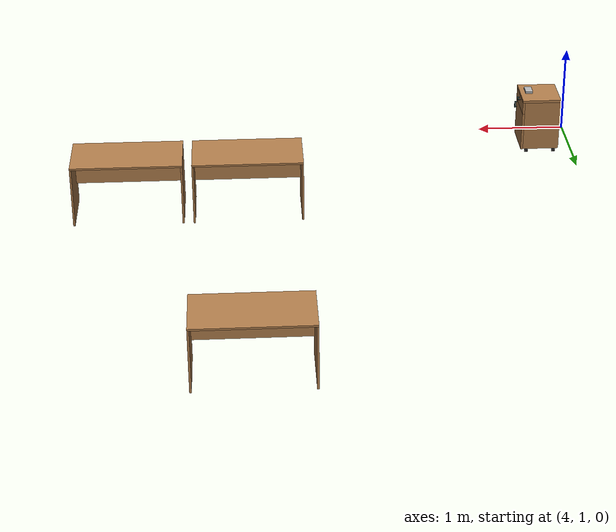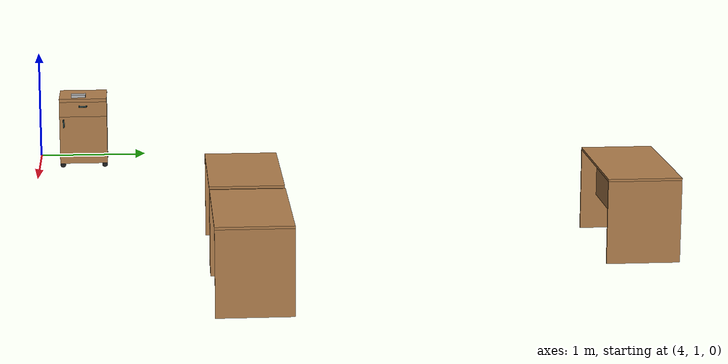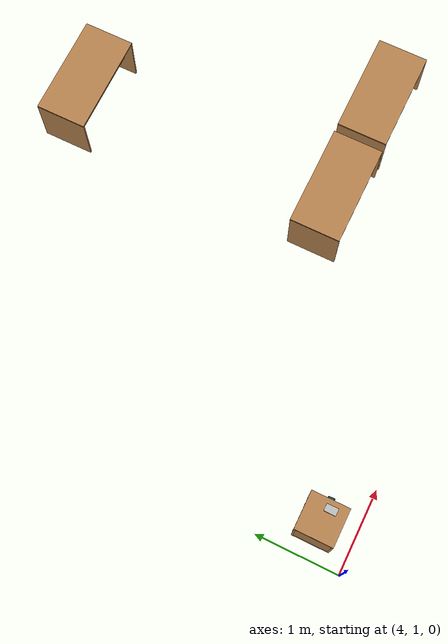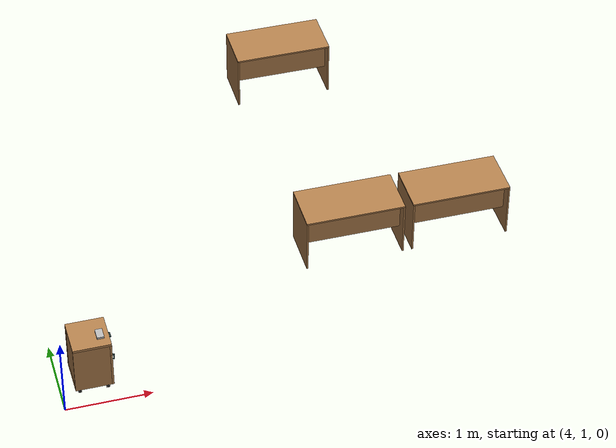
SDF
<sdf version="1.6">
 <world name="apartment">
  <model name="wagon">
   <link name="link">
    <inertial>
     <mass>10</mass>
     <inertia><ixx>1</ixx><ixy>0</ixy><ixz>0</ixz><iyy>1</iyy><iyz>0</iyz><izz>1</izz></inertia>
    </inertial>
    <visual name="left_board">
     <pose>-0.2325 0.01 0.345 0 -0 0</pose>
     <geometry><box><size>0.415 0.02 0.59</size></box></geometry>
     <material>
      <script><uri>model://base_materials/wood/scripts/wood.material</uri><name>base_materials/wood</name></script>
     </material>
    </visual>
    <collision name="collision_left_board">
     <pose>-0.2325 0.01 0.345 0 -0 0</pose>
     <geometry><box><size>0.415 0.02 0.59</size></box></geometry>
    </collision>
    <visual name="right_board">
     <pose>-0.2325 0.4325 0.345 0 -0 0</pose>
     <geometry><box><size>0.415 0.02 0.59</size></box></geometry>
     <material>
      <script><uri>model://base_materials/wood/scripts/wood.material</uri><name>base_materials/wood</name></script>
     </material>
    </visual>
    <collision name="collision_right_board">
     <pose>-0.2325 0.4325 0.345 0 -0 0</pose>
     <geometry><box><size>0.415 0.02 0.59</size></box></geometry>
    </collision>
    <visual name="top_board">
     <pose>-0.22 0.2225 0.655 0 -0 0</pose>
     <geometry><box><size>0.44 0.445 0.03</size></box></geometry>
     <material>
      <script><uri>model://base_materials/wood/scripts/wood.material</uri><name>base_materials/wood</name></script>
     </material>
    </visual>
    <collision name="collision_top_board">
     <pose>-0.22 0.2225 0.655 0 -0 0</pose>
     <geometry><box><size>0.44 0.445 0.03</size></box></geometry>
    </collision>
    <visual name="back_board">
     <pose>-0.425 0.2225 0.345 0 -0 0</pose>
     <geometry><box><size>0.02 0.405 0.59</size></box></geometry>
     <material>
      <script><uri>model://base_materials/wood/scripts/wood.material</uri><name>base_materials/wood</name></script>
     </material>
    </visual>
    <collision name="collision_back_board">
     <pose>-0.425 0.2225 0.345 0 -0 0</pose>
     <geometry><box><size>0.02 0.405 0.59</size></box></geometry>
    </collision>
    <visual name="bottom_board">
     <pose>-0.2325 0.2225 0.06 0 -0 0</pose>
     <geometry><box><size>0.415 0.405 0.02</size></box></geometry>
     <material>
      <script><uri>model://base_materials/wood/scripts/wood.material</uri><name>base_materials/wood</name></script>
     </material>
    </visual>
    <collision name="collision_bottom_board">
     <pose>-0.2325 0.2225 0.06 0 -0 0</pose>
     <geometry><box><size>0.415 0.405 0.02</size></box></geometry>
    </collision>
    <visual name="1st_drawer">
     <pose>-0.0125 0.2225 0.57 0 -0 0</pose>
     <geometry><box><size>0.025 0.445 0.14</size></box></geometry>
     <material>
      <script><uri>model://base_materials/wood/scripts/wood.material</uri><name>base_materials/wood</name></script>
     </material>
    </visual>
    <collision name="collision_1st_drawer">
     <pose>-0.0125 0.2225 0.57 0 -0 0</pose>
     <geometry><box><size>0.025 0.445 0.14</size></box></geometry>
    </collision>
    <visual name="1st_drawer_handle_l1">
     <pose>0.0115 0.1895 0.6 3.14159 1.57079 3.14159</pose>
     <geometry><cylinder><radius>0.007</radius><length>0.023</length></cylinder></geometry>
     <material>
      <ambient>0.18431 0.3098 0.3098 1</ambient>
      <diffuse>0.18431 0.3098 0.3098 1</diffuse>
      <specular>0.1 0.1 0.1 1</specular>
     </material>
    </visual>
    <collision name="collision_1st_drawer_handle_l1">
     <pose>0.0115 0.1895 0.6 3.14159 1.57079 3.14159</pose>
     <geometry><cylinder><radius>0.007</radius><length>0.023</length></cylinder></geometry>
    </collision>
    <visual name="1st_drawer_handle_l2">
     <pose>0.023 0.1895 0.6 0 -0 0</pose>
     <geometry><sphere><radius>0.007</radius></sphere></geometry>
     <material>
      <ambient>0.18431 0.3098 0.3098 1</ambient>
      <diffuse>0.18431 0.3098 0.3098 1</diffuse>
      <specular>0.1 0.1 0.1 1</specular>
     </material>
    </visual>
    <collision name="collision_1st_drawer_handle_l2">
     <pose>0.023 0.1895 0.6 0 -0 0</pose>
     <geometry><sphere><radius>0.007</radius></sphere></geometry>
    </collision>
    <visual name="1st_drawer_handle_r1">
     <pose>0.0115 0.2555 0.6 3.14159 1.57079 3.14159</pose>
     <geometry><cylinder><radius>0.007</radius><length>0.023</length></cylinder></geometry>
     <material>
      <ambient>0.18431 0.3098 0.3098 1</ambient>
      <diffuse>0.18431 0.3098 0.3098 1</diffuse>
      <specular>0.1 0.1 0.1 1</specular>
     </material>
    </visual>
    <collision name="collision_1st_drawer_handle_r1">
     <pose>0.0115 0.2555 0.6 3.14159 1.57079 3.14159</pose>
     <geometry><cylinder><radius>0.007</radius><length>0.023</length></cylinder></geometry>
    </collision>
    <visual name="1st_drawer_handle_r2">
     <pose>0.023 0.2555 0.6 0 -0 0</pose>
     <geometry><sphere><radius>0.007</radius></sphere></geometry>
     <material>
      <ambient>0.18431 0.3098 0.3098 1</ambient>
      <diffuse>0.18431 0.3098 0.3098 1</diffuse>
      <specular>0.1 0.1 0.1 1</specular>
     </material>
    </visual>
    <collision name="collision_1st_drawer_handle_r2">
     <pose>0.023 0.2555 0.6 0 -0 0</pose>
     <geometry><sphere><radius>0.007</radius></sphere></geometry>
    </collision>
    <visual name="1st_drawer_handle_center">
     <pose>0.023 0.2225 0.6 1.5708 -0 0</pose>
     <geometry><cylinder><radius>0.007</radius><length>0.066</length></cylinder></geometry>
     <material>
      <ambient>0.18431 0.3098 0.3098 1</ambient>
      <diffuse>0.18431 0.3098 0.3098 1</diffuse>
      <specular>0.1 0.1 0.1 1</specular>
     </material>
    </visual>
    <collision name="collision_1st_drawer_handle_center">
     <pose>0.023 0.2225 0.6 1.5708 -0 0</pose>
     <geometry><cylinder><radius>0.007</radius><length>0.066</length></cylinder></geometry>
    </collision>
    <visual name="2nd_drawer">
     <pose>-0.0125 0.2225 0.275 0 -0 0</pose>
     <geometry><box><size>0.025 0.445 0.45</size></box></geometry>
     <material>
      <script><uri>model://base_materials/wood/scripts/wood.material</uri><name>base_materials/wood</name></script>
     </material>
    </visual>
    <collision name="collision_2nd_drawer">
     <pose>-0.0125 0.2225 0.275 0 -0 0</pose>
     <geometry><box><size>0.025 0.445 0.45</size></box></geometry>
    </collision>
    <visual name="2nd_drawer_handle_top1">
     <pose>0.0115 0.04 0.47 3.14159 1.57079 3.14159</pose>
     <geometry><cylinder><radius>0.007</radius><length>0.023</length></cylinder></geometry>
     <material>
      <ambient>0.18431 0.3098 0.3098 1</ambient>
      <diffuse>0.18431 0.3098 0.3098 1</diffuse>
      <specular>0.1 0.1 0.1 1</specular>
     </material>
    </visual>
    <collision name="collision_2nd_drawer_handle_top1">
     <pose>0.0115 0.04 0.47 3.14159 1.57079 3.14159</pose>
     <geometry><cylinder><radius>0.007</radius><length>0.023</length></cylinder></geometry>
    </collision>
    <visual name="2nd_drawer_handle_top2">
     <pose>0.023 0.04 0.47 0 -0 0</pose>
     <geometry><sphere><radius>0.007</radius></sphere></geometry>
     <material>
      <ambient>0.18431 0.3098 0.3098 1</ambient>
      <diffuse>0.18431 0.3098 0.3098 1</diffuse>
      <specular>0.1 0.1 0.1 1</specular>
     </material>
    </visual>
    <collision name="2nd_drawer_handle_top2">
     <pose>0.023 0.04 0.47 0 -0 0</pose>
     <geometry><sphere><radius>0.007</radius></sphere></geometry>
    </collision>
    <visual name="2nd_drawer_handle_bottom1">
     <pose>0.0115 0.04 0.404 3.14159 1.57079 3.14159</pose>
     <geometry><cylinder><radius>0.007</radius><length>0.023</length></cylinder></geometry>
     <material>
      <ambient>0.18431 0.3098 0.3098 1</ambient>
      <diffuse>0.18431 0.3098 0.3098 1</diffuse>
      <specular>0.1 0.1 0.1 1</specular>
     </material>
    </visual>
    <collision name="collision_2nd_drawer_handle_bottom1">
     <pose>0.0115 0.04 0.404 3.14159 1.57079 3.14159</pose>
     <geometry><cylinder><radius>0.007</radius><length>0.023</length></cylinder></geometry>
    </collision>
    <visual name="2nd_drawer_handle_bottom2">
     <pose>0.023 0.04 0.404 0 -0 0</pose>
     <geometry><sphere><radius>0.007</radius></sphere></geometry>
     <material>
      <ambient>0.18431 0.3098 0.3098 1</ambient>
      <diffuse>0.18431 0.3098 0.3098 1</diffuse>
      <specular>0.1 0.1 0.1 1</specular>
     </material>
    </visual>
    <collision name="2nd_drawer_handle_bottom2">
     <pose>0.023 0.04 0.404 0 -0 0</pose>
     <geometry><sphere><radius>0.007</radius></sphere></geometry>
    </collision>
    <visual name="2nd_drawer_handle_center">
     <pose>0.023 0.04 0.437 0 -0 0</pose>
     <geometry><cylinder><radius>0.007</radius><length>0.066</length></cylinder></geometry>
     <material>
      <ambient>0.18431 0.3098 0.3098 1</ambient>
      <diffuse>0.18431 0.3098 0.3098 1</diffuse>
      <specular>0.1 0.1 0.1 1</specular>
     </material>
    </visual>
    <collision name="collision_2nd_drawer_handle_center">
     <pose>0.023 0.04 0.437 0 -0 0</pose>
     <geometry><cylinder><radius>0.007</radius><length>0.066</length></cylinder></geometry>
    </collision>
    <visual name="left_front_caster">
     <pose>-0.07 0.025 0.025 3.14159 1.57079 3.14159</pose>
     <geometry><cylinder><radius>0.025</radius><length>0.035</length></cylinder></geometry>
     <material><script><name>Gazebo/Black</name><uri>__default__</uri></script></material>
    </visual>
    <collision name="collision_left_front_caster">
     <pose>-0.07 0.025 0.025 3.14159 1.57079 3.14159</pose>
     <geometry><cylinder><radius>0.025</radius><length>0.035</length></cylinder></geometry>
    </collision>
    <visual name="right_front_caster">
     <pose>-0.07 0.42 0.025 3.14159 1.57079 3.14159</pose>
     <geometry><cylinder><radius>0.025</radius><length>0.035</length></cylinder></geometry>
     <material><script><name>Gazebo/Black</name><uri>__default__</uri></script></material>
    </visual>
    <collision name="collision_right_front_caster">
     <pose>-0.07 0.42 0.025 3.14159 1.57079 3.14159</pose>
     <geometry><cylinder><radius>0.025</radius><length>0.035</length></cylinder></geometry>
    </collision>
    <visual name="left_back_caster">
     <pose>-0.39 0.025 0.025 3.14159 1.57079 3.14159</pose>
     <geometry><cylinder><radius>0.025</radius><length>0.035</length></cylinder></geometry>
     <material><script><name>Gazebo/Black</name><uri>__default__</uri></script></material>
    </visual>
    <collision name="collision_left_back_caster">
     <pose>-0.39 0.025 0.025 3.14159 1.57079 3.14159</pose>
     <geometry><cylinder><radius>0.025</radius><length>0.035</length></cylinder></geometry>
    </collision>
    <visual name="right_back_caster">
     <pose>-0.39 0.42 0.025 3.14159 1.57079 3.14159</pose>
     <geometry><cylinder><radius>0.025</radius><length>0.035</length></cylinder></geometry>
     <material><script><name>Gazebo/Black</name><uri>__default__</uri></script></material>
    </visual>
    <collision name="collision_right_back_caster">
     <pose>-0.39 0.42 0.025 3.14159 1.57079 3.14159</pose>
     <geometry><cylinder><radius>0.025</radius><length>0.035</length></cylinder></geometry>
    </collision>
    <velocity_decay><linear>0</linear><angular>0</angular></velocity_decay>
   </link>
   <static>1</static>
   <pose>4.6 1.2 0 0 -0 0</pose>
  </model>
  <model name="nasal_cupsul">
   <link name="link">
    <inertial>
     <mass>0.1</mass>
     <inertia><ixx>0.0001</ixx><ixy>0</ixy><ixz>0</ixz><iyy>0.0001</iyy><iyz>0</iyz><izz>0.0001</izz></inertia>
    </inertial>
    <visual name="capsul">
     <geometry><box><size>0.083 0.135 0.026</size></box></geometry>
     <material>
      <script>
       <uri>model://nasal_inflammation_capsul/scripts</uri>
       <uri>model://nasal_inflammation_capsul/textures</uri>
       <name>oral_medicine/nasal_inflammation_capsule</name>
      </script>
     </material>
    </visual>
    <collision name="collision_capsul">
     <geometry><box><size>0.083 0.135 0.026</size></box></geometry>
     <surface>
      <bounce><restitution_coefficient>0.2</restitution_coefficient><threshold>0</threshold></bounce>
      <contact><ode><max_vel>10</max_vel></ode></contact>
     </surface>
    </collision>
    <velocity_decay><linear>0</linear><angular>0</angular></velocity_decay>
   </link>
   <static>0</static>
   <pose>4.50001 1.38 0.682993 0 0.000171 -7.4e-05</pose>
  </model>
  <model name="office_desk01">
   <link name="link">
    <inertial>
     <mass>10</mass>
     <inertia><ixx>1</ixx><ixy>0</ixy><ixz>0</ixz><iyy>1</iyy><iyz>0</iyz><izz>1</izz></inertia>
    </inertial>
    <visual name="top_board">
     <pose>-0.3 0.6 0.69 0 -0 0</pose>
     <geometry><box><size>0.6 1.2 0.02</size></box></geometry>
     <material>
      <script>
       <uri>model://base_materials/wood/scripts/wood.material</uri>
       <name>base_materials/dark_wood</name>
      </script>
     </material>
    </visual>
    <collision name="collision_top_board">
     <pose>-0.3 0.6 0.69 0 -0 0</pose>
     <geometry><box><size>0.6 1.2 0.02</size></box></geometry>
    </collision>
    <visual name="left_board">
     <pose>-0.3 0.01 0.34 0 -0 0</pose>
     <geometry><box><size>0.6 0.02 0.68</size></box></geometry>
     <material>
      <script>
       <uri>model://base_materials/wood/scripts/wood.material</uri>
       <name>base_materials/dark_wood</name>
      </script>
     </material>
    </visual>
    <collision name="collision_left_board">
     <pose>-0.3 0.01 0.34 0 -0 0</pose>
     <geometry><box><size>0.6 0.02 0.68</size></box></geometry>
    </collision>
    <visual name="right_board">
     <pose>-0.3 1.19 0.34 0 -0 0</pose>
     <geometry><box><size>0.6 0.02 0.68</size></box></geometry>
     <material>
      <script>
       <uri>model://base_materials/wood/scripts/wood.material</uri>
       <name>base_materials/dark_wood</name>
      </script>
     </material>
    </visual>
    <collision name="collision_right_board">
     <pose>-0.3 1.19 0.34 0 -0 0</pose>
     <geometry><box><size>0.6 0.02 0.68</size></box></geometry>
    </collision>
    <visual name="center_board">
     <pose>-0.14 0.6 0.49 0 -0 0</pose>
     <geometry><box><size>0.02 1.16 0.4</size></box></geometry>
     <material>
      <script>
       <uri>model://base_materials/wood/scripts/wood.material</uri>
       <name>base_materials/dark_wood</name>
      </script>
     </material>
    </visual>
    <collision name="ollision_center_board">
     <pose>-0.14 0.6 0.49 0 -0 0</pose>
     <geometry><box><size>0.02 1.16 0.4</size></box></geometry>
    </collision>
    <velocity_decay><linear>0</linear><angular>0</angular></velocity_decay>
   </link>
   <static>1</static>
   <pose>8.5 2.5 0 0 0 -1.5708</pose>
  </model>
  <model name="office_desk02">
   <link name="link">
    <inertial>
     <mass>10</mass>
     <inertia><ixx>1</ixx><ixy>0</ixy><ixz>0</ixz><iyy>1</iyy><iyz>0</iyz><izz>1</izz></inertia>
    </inertial>
    <visual name="top_board">
     <pose>-0.3 0.6 0.69 0 -0 0</pose>
     <geometry><box><size>0.6 1.2 0.02</size></box></geometry>
     <material>
      <script>
       <uri>model://base_materials/wood/scripts/wood.material</uri>
       <name>base_materials/dark_wood</name>
      </script>
     </material>
    </visual>
    <collision name="collision_top_board">
     <pose>-0.3 0.6 0.69 0 -0 0</pose>
     <geometry><box><size>0.6 1.2 0.02</size></box></geometry>
    </collision>
    <visual name="left_board">
     <pose>-0.3 0.01 0.34 0 -0 0</pose>
     <geometry><box><size>0.6 0.02 0.68</size></box></geometry>
     <material>
      <script>
       <uri>model://base_materials/wood/scripts/wood.material</uri>
       <name>base_materials/dark_wood</name>
      </script>
     </material>
    </visual>
    <collision name="collision_left_board">
     <pose>-0.3 0.01 0.34 0 -0 0</pose>
     <geometry><box><size>0.6 0.02 0.68</size></box></geometry>
    </collision>
    <visual name="right_board">
     <pose>-0.3 1.19 0.34 0 -0 0</pose>
     <geometry><box><size>0.6 0.02 0.68</size></box></geometry>
     <material>
      <script>
       <uri>model://base_materials/wood/scripts/wood.material</uri>
       <name>base_materials/dark_wood</name>
      </script>
     </material>
    </visual>
    <collision name="collision_right_board">
     <pose>-0.3 1.19 0.34 0 -0 0</pose>
     <geometry><box><size>0.6 0.02 0.68</size></box></geometry>
    </collision>
    <visual name="center_board">
     <pose>-0.14 0.6 0.49 0 -0 0</pose>
     <geometry><box><size>0.02 1.16 0.4</size></box></geometry>
     <material>
      <script>
       <uri>model://base_materials/wood/scripts/wood.material</uri>
       <name>base_materials/dark_wood</name>
      </script>
     </material>
    </visual>
    <collision name="ollision_center_board">
     <pose>-0.14 0.6 0.49 0 -0 0</pose>
     <geometry><box><size>0.02 1.16 0.4</size></box></geometry>
    </collision>
    <velocity_decay><linear>0</linear><angular>0</angular></velocity_decay>
   </link>
   <static>1</static>
   <pose>7.2 2.5 0 0 0 -1.5708</pose>
  </model>
  <model name="office_desk06">
   <link name="link">
    <inertial>
     <mass>10</mass>
     <inertia><ixx>1</ixx><ixy>0</ixy><ixz>0</ixz><iyy>1</iyy><iyz>0</iyz><izz>1</izz></inertia>
    </inertial>
    <visual name="top_board">
     <pose>-0.3 0.6 0.69 0 -0 0</pose>
     <geometry><box><size>0.6 1.2 0.02</size></box></geometry>
     <material>
      <script>
       <uri>model://base_materials/wood/scripts/wood.material</uri>
       <name>base_materials/dark_wood</name>
      </script>
     </material>
    </visual>
    <collision name="collision_top_board">
     <pose>-0.3 0.6 0.69 0 -0 0</pose>
     <geometry><box><size>0.6 1.2 0.02</size></box></geometry>
    </collision>
    <visual name="left_board">
     <pose>-0.3 0.01 0.34 0 -0 0</pose>
     <geometry><box><size>0.6 0.02 0.68</size></box></geometry>
     <material>
      <script>
       <uri>model://base_materials/wood/scripts/wood.material</uri>
       <name>base_materials/dark_wood</name>
      </script>
     </material>
    </visual>
    <collision name="collision_left_board">
     <pose>-0.3 0.01 0.34 0 -0 0</pose>
     <geometry><box><size>0.6 0.02 0.68</size></box></geometry>
    </collision>
    <visual name="right_board">
     <pose>-0.3 1.19 0.34 0 -0 0</pose>
     <geometry><box><size>0.6 0.02 0.68</size></box></geometry>
     <material>
      <script>
       <uri>model://base_materials/wood/scripts/wood.material</uri>
       <name>base_materials/dark_wood</name>
      </script>
     </material>
    </visual>
    <collision name="collision_right_board">
     <pose>-0.3 1.19 0.34 0 -0 0</pose>
     <geometry><box><size>0.6 0.02 0.68</size></box></geometry>
    </collision>
    <visual name="center_board">
     <pose>-0.14 0.6 0.49 0 -0 0</pose>
     <geometry><box><size>0.02 1.16 0.4</size></box></geometry>
     <material>
      <script>
       <uri>model://base_materials/wood/scripts/wood.material</uri>
       <name>base_materials/dark_wood</name>
      </script>
     </material>
    </visual>
    <collision name="ollision_center_board">
     <pose>-0.14 0.6 0.49 0 -0 0</pose>
     <geometry><box><size>0.02 1.16 0.4</size></box></geometry>
    </collision>
    <velocity_decay><linear>0</linear><angular>0</angular></velocity_decay>
   </link>
   <static>1</static>
   <pose>7.2 5.7 0 0 0 -1.5708</pose>
  </model>
 </world>
</sdf>
